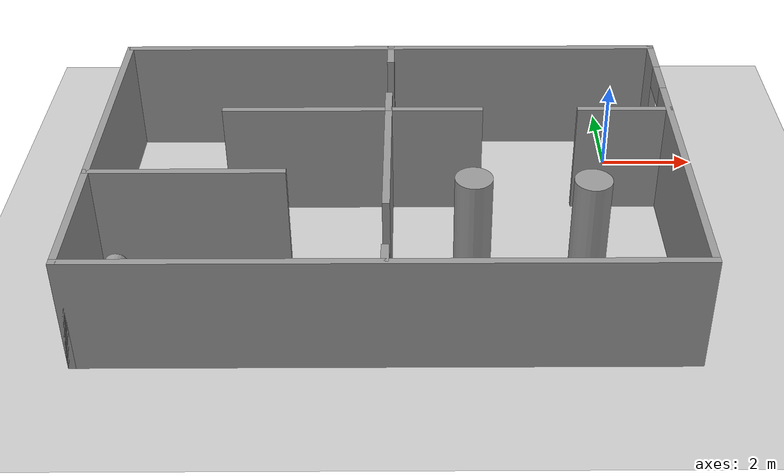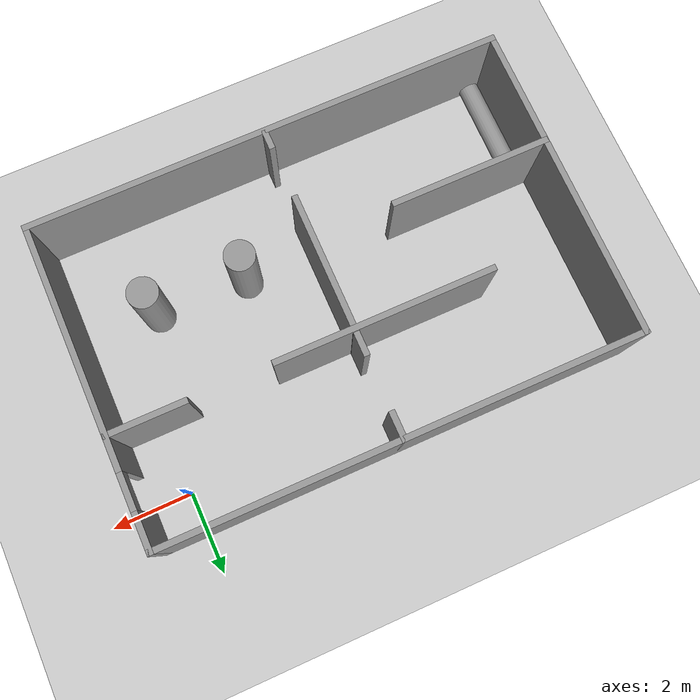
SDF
<sdf version="1.7">
 <world name="default">
  <light name="sun" type="directional">
   <pose>0 0 10 0 -0 0</pose>
   <diffuse>0.8 0.8 0.8 1</diffuse>
   <specular>0.2 0.2 0.2 1</specular>
   <attenuation>
    <range>1000</range>
    <constant>0.9</constant>
    <linear>0.01</linear>
    <quadratic>0.001</quadratic>
   </attenuation>
   <direction>-0.5 0.1 -0.9</direction>
   <spot><inner_angle>0</inner_angle><outer_angle>0</outer_angle><falloff>0</falloff></spot>
  </light>
  <model name="ground_plane">
   <static>1</static>
   <link name="link">
    <collision name="collision">
     <geometry><plane><normal>0 0 1</normal><size>100 100</size></plane></geometry>
     <surface>
      <contact><collide_bitmask>65535</collide_bitmask></contact>
      <friction><ode><mu>100</mu><mu2>50</mu2></ode></friction>
     </surface>
    </collision>
    <visual name="visual">
     <cast_shadows>0</cast_shadows>
     <geometry><plane><normal>0 0 1</normal><size>100 100</size></plane></geometry>
     <material>
      <script><uri>file://media/materials/scripts/gazebo.material</uri><name>Gazebo/Grey</name></script>
     </material>
    </visual>
   </link>
  </model>
  <gravity>0 0 -9.8</gravity>
  <magnetic_field>6e-06 2.3e-05 -4.2e-05</magnetic_field>
  <atmosphere type="adiabatic"/>
  <physics type="ode">
   <max_step_size>0.001</max_step_size>
   <real_time_factor>1</real_time_factor>
   <real_time_update_rate>1000</real_time_update_rate>
  </physics>
  <scene><ambient>0.4 0.4 0.4 1</ambient><background>0.7 0.7 0.7 1</background><shadows>1</shadows></scene>
  <spherical_coordinates>
   <surface_model>EARTH_WGS84</surface_model>
   <latitude_deg>0</latitude_deg>
   <longitude_deg>0</longitude_deg>
   <elevation>0</elevation>
   <heading_deg>0</heading_deg>
  </spherical_coordinates>
  <model name="gas_worldv3">
   <pose>-4.925 -2.925 0 0 -0 0</pose>
   <link name="Wall_1">
    <collision name="Wall_1_Collision">
     <geometry><box><size>12 0.15 2.5</size></box></geometry>
     <pose>0 0 1.25 0 -0 0</pose>
    </collision>
    <visual name="Wall_1_Visual">
     <pose>0 0 1.25 0 -0 0</pose>
     <geometry><box><size>12 0.15 2.5</size></box></geometry>
     <material>
      <script><uri>file://media/materials/scripts/gazebo.material</uri><name>Gazebo/Grey</name></script>
      <ambient>1 1 1 1</ambient>
     </material>
     <meta><layer>0</layer></meta>
    </visual>
    <pose>0 3.925 0 0 -0 3.14159</pose>
   </link>
   <link name="Wall_21">
    <collision name="Wall_21_Collision">
     <geometry><box><size>0.75 0.15 2.5</size></box></geometry>
     <pose>0 0 1.25 0 -0 0</pose>
    </collision>
    <visual name="Wall_21_Visual">
     <pose>0 0 1.25 0 -0 0</pose>
     <geometry><box><size>0.75 0.15 2.5</size></box></geometry>
     <material>
      <script><uri>file://media/materials/scripts/gazebo.material</uri><name>Gazebo/Grey</name></script>
      <ambient>1 1 1 1</ambient>
     </material>
     <meta><layer>0</layer></meta>
    </visual>
    <pose>0.009 3.625 0 0 -0 -1.5708</pose>
   </link>
   <link name="Wall_29">
    <collision name="Wall_29_Collision">
     <geometry><box><size>0.75 0.15 2.5</size></box></geometry>
     <pose>0 0 1.25 0 -0 0</pose>
    </collision>
    <visual name="Wall_29_Visual">
     <pose>0 0 1.25 0 -0 0</pose>
     <geometry><box><size>0.75 0.15 2.5</size></box></geometry>
     <material>
      <script><uri>file://media/materials/scripts/gazebo.material</uri><name>Gazebo/Grey</name></script>
      <ambient>1 1 1 1</ambient>
     </material>
     <meta><layer>0</layer></meta>
    </visual>
    <pose>-0.007507 1.56042 0 0 -0 1.5708</pose>
   </link>
   <link name="Wall_31">
    <collision name="Wall_31_Collision">
     <geometry><box><size>5.5 0.15 2.5</size></box></geometry>
     <pose>0 0 1.25 0 -0 0</pose>
    </collision>
    <visual name="Wall_31_Visual">
     <pose>0 0 1.25 0 -0 0</pose>
     <geometry><box><size>5.5 0.15 2.5</size></box></geometry>
     <material>
      <script><uri>file://media/materials/scripts/gazebo.material</uri><name>Gazebo/Grey</name></script>
      <ambient>1 1 1 1</ambient>
     </material>
     <meta><layer>0</layer></meta>
    </visual>
    <pose>-0.766539 1.24716 0 0 -0 0</pose>
   </link>
   <link name="Wall_33">
    <collision name="Wall_33_Collision">
     <geometry><box><size>2 0.15 2.5</size></box></geometry>
     <pose>0 0 1.25 0 -0 0</pose>
    </collision>
    <visual name="Wall_33_Visual">
     <pose>0 0 1.25 0 -0 0</pose>
     <geometry><box><size>2 0.15 2.5</size></box></geometry>
     <material>
      <script><uri>file://media/materials/scripts/gazebo.material</uri><name>Gazebo/Grey</name></script>
      <ambient>1 1 1 1</ambient>
     </material>
     <meta><layer>0</layer></meta>
    </visual>
    <pose>4.98346 1.24716 0 0 -0 0</pose>
   </link>
   <link name="Wall_37">
    <collision name="Wall_37_Collision">
     <geometry><box><size>4 0.15 2.5</size></box></geometry>
     <pose>0 0 1.25 0 -0 0</pose>
    </collision>
    <visual name="Wall_37_Visual">
     <pose>0 0 1.25 0 -0 0</pose>
     <geometry><box><size>4 0.15 2.5</size></box></geometry>
     <material>
      <script><uri>file://media/materials/scripts/gazebo.material</uri><name>Gazebo/Grey</name></script>
      <ambient>1 1 1 1</ambient>
     </material>
     <meta><layer>0</layer></meta>
    </visual>
    <pose>-3.98902 -1.06436 0 0 -0 0</pose>
   </link>
   <link name="Wall_39">
    <collision name="Wall_39_Collision">
     <geometry><box><size>3.5 0.15 2.5</size></box></geometry>
     <pose>0 0 1.25 0 -0 0</pose>
    </collision>
    <visual name="Wall_39_Visual">
     <pose>0 0 1.25 0 -0 0</pose>
     <geometry><box><size>3.5 0.15 2.5</size></box></geometry>
     <material>
      <script><uri>file://media/materials/scripts/gazebo.material</uri><name>Gazebo/Grey</name></script>
      <ambient>1 1 1 1</ambient>
     </material>
     <meta><layer>0</layer></meta>
    </visual>
    <pose>-0.007507 -0.414576 0 0 -0 -1.5708</pose>
   </link>
   <link name="Wall_41">
    <collision name="Wall_41_Collision">
     <geometry><box><size>0.5 0.15 2.5</size></box></geometry>
     <pose>0 0 1.25 0 -0 0</pose>
    </collision>
    <visual name="Wall_41_Visual">
     <pose>0 0 1.25 0 -0 0</pose>
     <geometry><box><size>0.5 0.15 2.5</size></box></geometry>
     <material>
      <script><uri>file://media/materials/scripts/gazebo.material</uri><name>Gazebo/Grey</name></script>
      <ambient>1 1 1 1</ambient>
     </material>
     <meta><layer>0</layer></meta>
    </visual>
    <pose>9.4e-05 -3.68327 0 0 -0 1.5708</pose>
   </link>
   <link name="Wall_6">
    <pose>5.925 -0 0 0 -0 -1.5708</pose>
    <visual name="Wall_6_Visual_0">
     <pose>-3.50227 0 1.25 0 -0 0</pose>
     <geometry><box><size>0.995458 0.15 2.5</size></box></geometry>
     <material>
      <script><uri>file://media/materials/scripts/gazebo.material</uri><name>Gazebo/Grey</name></script>
      <ambient>1 1 1 1</ambient>
     </material>
     <meta><layer>0</layer></meta>
    </visual>
    <collision name="Wall_6_Collision_0">
     <geometry><box><size>0.995458 0.15 2.5</size></box></geometry>
     <pose>-3.50227 0 1.25 0 -0 0</pose>
    </collision>
    <visual name="Wall_6_Visual_1">
     <pose>0.947729 0 1.25 0 -0 0</pose>
     <geometry><box><size>6.10454 0.15 2.5</size></box></geometry>
     <material>
      <script><uri>file://media/materials/scripts/gazebo.material</uri><name>Gazebo/Grey</name></script>
      <ambient>1 1 1 1</ambient>
     </material>
     <meta><layer>0</layer></meta>
    </visual>
    <collision name="Wall_6_Collision_1">
     <geometry><box><size>6.10454 0.15 2.5</size></box></geometry>
     <pose>0.947729 0 1.25 0 -0 0</pose>
    </collision>
    <visual name="Wall_6_Visual_2">
     <pose>-2.55454 0 2.25 0 -0 0</pose>
     <geometry><box><size>0.9 0.15 0.5</size></box></geometry>
     <material>
      <script><uri>file://media/materials/scripts/gazebo.material</uri><name>Gazebo/Grey</name></script>
      <ambient>1 1 1 1</ambient>
     </material>
     <meta><layer>0</layer></meta>
    </visual>
    <collision name="Wall_6_Collision_2">
     <geometry><box><size>0.9 0.15 0.5</size></box></geometry>
     <pose>-2.55454 0 2.25 0 -0 0</pose>
    </collision>
   </link>
   <link name="Wall_8">
    <collision name="Wall_8_Collision">
     <geometry><box><size>8 0.15 2.5</size></box></geometry>
     <pose>0 0 1.25 0 -0 0</pose>
    </collision>
    <visual name="Wall_8_Visual">
     <pose>0 0 1.25 0 -0 0</pose>
     <geometry><box><size>8 0.15 2.5</size></box></geometry>
     <material>
      <script><uri>file://media/materials/scripts/gazebo.material</uri><name>Gazebo/Grey</name></script>
      <ambient>1 1 1 1</ambient>
     </material>
     <meta><layer>0</layer></meta>
    </visual>
    <pose>-5.925 -0 0 0 -0 -1.5708</pose>
   </link>
   <link name="Wall_9">
    <collision name="Wall_9_Collision">
     <geometry><box><size>12 0.15 2.5</size></box></geometry>
     <pose>0 0 1.25 0 -0 0</pose>
    </collision>
    <visual name="Wall_9_Visual">
     <pose>0 0 1.25 0 -0 0</pose>
     <geometry><box><size>12 0.15 2.5</size></box></geometry>
     <material>
      <script><uri>file://media/materials/scripts/gazebo.material</uri><name>Gazebo/Grey</name></script>
      <ambient>1 1 1 1</ambient>
     </material>
     <meta><layer>0</layer></meta>
    </visual>
    <pose>0 -3.925 0 0 -0 0</pose>
   </link>
   <static>1</static>
  </model>
  <model name="unit_cylinder">
   <pose>-3.22682 -4.26523 1.251 0 0 -9.2e-05</pose>
   <link name="link">
    <inertial>
     <mass>1</mass>
     <inertia><ixx>0.145833</ixx><ixy>0</ixy><ixz>0</ixz><iyy>0.145833</iyy><iyz>0</iyz><izz>0.125</izz></inertia>
    </inertial>
    <collision name="collision">
     <geometry><cylinder><radius>0.379045</radius><length>2.50202</length></cylinder></geometry>
    </collision>
    <visual name="visual">
     <geometry><cylinder><radius>0.379045</radius><length>2.50202</length></cylinder></geometry>
     <material>
      <script><name>Gazebo/Grey</name><uri>file://media/materials/scripts/gazebo.material</uri></script>
     </material>
    </visual>
   </link>
  </model>
  <model name="unit_cylinder_clone">
   <pose>-0.900031 -4.33935 1.251 0 0 -9.2e-05</pose>
   <link name="link">
    <inertial>
     <mass>1</mass>
     <inertia><ixx>0.145833</ixx><ixy>0</ixy><ixz>0</ixz><iyy>0.145833</iyy><iyz>0</iyz><izz>0.125</izz></inertia>
    </inertial>
    <collision name="collision">
     <geometry><cylinder><radius>0.379045</radius><length>2.502</length></cylinder></geometry>
    </collision>
    <visual name="visual">
     <geometry><cylinder><radius>0.379045</radius><length>2.502</length></cylinder></geometry>
     <material>
      <script><name>Gazebo/Grey</name><uri>file://media/materials/scripts/gazebo.material</uri></script>
     </material>
    </visual>
   </link>
  </model>
  <model name="unit_cylinder_0">
   <pose>-10.5088 -5.41669 0.264984 1.57516 -0 0</pose>
   <link name="link">
    <inertial>
     <mass>1</mass>
     <inertia><ixx>0.145833</ixx><ixy>0</ixy><ixz>0</ixz><iyy>0.145833</iyy><iyz>0</iyz><izz>0.125</izz></inertia>
    </inertial>
    <collision name="collision">
     <geometry><cylinder><radius>0.252846</radius><length>2.66391</length></cylinder></geometry>
    </collision>
    <visual name="visual">
     <geometry><cylinder><radius>0.252846</radius><length>2.66391</length></cylinder></geometry>
     <material>
      <script><name>Gazebo/Grey</name><uri>file://media/materials/scripts/gazebo.material</uri></script>
     </material>
    </visual>
   </link>
  </model>
 </world>
</sdf>
